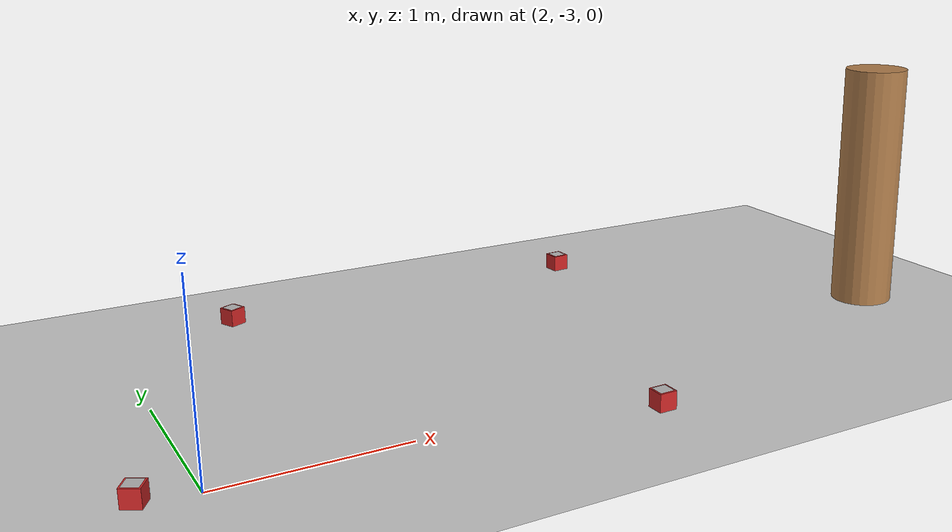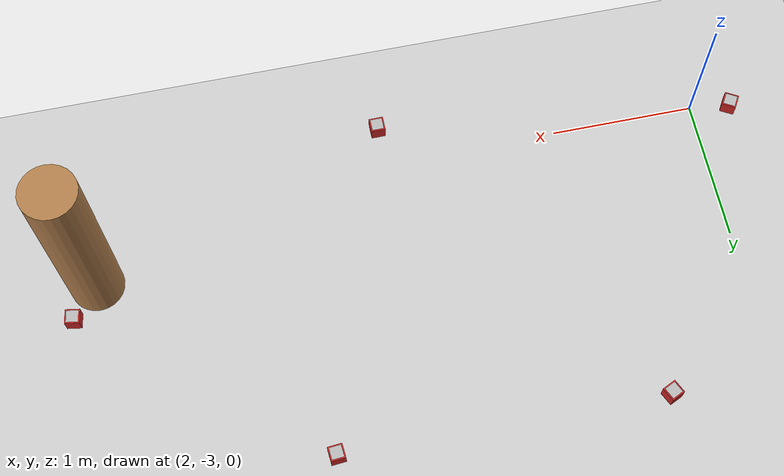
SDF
<sdf version="1.7">
 <world name="default">
  <model name="ground_plane">
   <static>1</static>
   <link name="link">
    <collision name="collision">
     <geometry><plane><normal>0 0 1</normal><size>100 100</size></plane></geometry>
     <surface><friction><ode><mu>100</mu><mu2>50</mu2></ode></friction></surface>
    </collision>
    <visual name="visual">
     <cast_shadows>0</cast_shadows>
     <geometry><plane><normal>0 0 1</normal><size>100 100</size></plane></geometry>
     <material>
      <script><uri>file://media/materials/scripts/gazebo.material</uri><name>Gazebo/Grey</name></script>
     </material>
    </visual>
   </link>
  </model>
  <model name="construction_cone_1">
   <pose>6.31383 -2.49412 0.728545 0 -0 -3.6e-05</pose>
   <link name="link">
    <inertial>
     <mass>1</mass>
     <inertia><ixx>0.145833</ixx><ixy>0</ixy><ixz>0</ixz><iyy>0.145833</iyy><iyz>0</iyz><izz>0.125</izz></inertia>
    </inertial>
    <collision name="collision">
     <geometry><cylinder><radius>0.183096</radius><length>1.4571</length></cylinder></geometry>
    </collision>
    <visual name="visual">
     <geometry><cylinder><radius>0.183096</radius><length>1.4571</length></cylinder></geometry>
     <material>
      <script><name>Gazebo/Wood</name><uri>file://media/materials/scripts/gazebo.material</uri></script>
     </material>
    </visual>
   </link>
  </model>
  <model name="poly_4">
   <pose>6.49418 -2.26681 0.049997 1e-06 6.1e-05 -0.158787</pose>
   <static>1</static>
   <link name="poly_4_link">
    <inertial>
     <mass>0.7</mass>
     <inertia>
      <ixx>0.00016667</ixx>
      <ixy>0</ixy>
      <ixz>0</ixz>
      <iyy>0.00016667</iyy>
      <iyz>0</iyz>
      <izz>0.00016667</izz>
     </inertia>
    </inertial>
    <collision name="collision"><geometry><box><size>0.1 0.1 0.1</size></box></geometry></collision>
    <visual name="visual">
     <geometry><box><size>0.1 0.1 0.1</size></box></geometry>
     <material>
      <script><name>Gazebo/Red</name><uri>file://media/materials/scripts/gazebo.material</uri></script>
     </material>
    </visual>
   </link>
   <link name="tag4">
    <pose>0 0 0.051 0 -0 0</pose>
    <collision name="collision"><geometry><box><size>0.0825 0.0825 0.0001</size></box></geometry></collision>
    <visual name="visual">
     <cast_shadows>0</cast_shadows>
     <geometry><box><size>0.0825 0.0825 0.0001</size></box></geometry>
     <material>
      <script>
       <uri>model://artag/materials/scripts</uri>
       <uri>model://artag/materials/textures</uri>
       <name>material/artag4</name>
      </script>
     </material>
    </visual>
    <inertial>
     <inertia><ixx>0.0001</ixx><ixy>0</ixy><ixz>0</ixz><iyy>0.0001</iyy><iyz>0</iyz><izz>0.0001</izz></inertia>
     <mass>0.1</mass>
    </inertial>
   </link>
   <joint name="poly_4_tag4" type="fixed">
    <parent>poly_4_link</parent>
    <child>tag4</child>
    <axis>
     <xyz>0 1 0</xyz>
     <limit><lower>-1e+16</lower><upper>1e+16</upper></limit>
     <use_parent_model_frame>0</use_parent_model_frame>
    </axis>
   </joint>
  </model>
  <model name="poly_8">
   <pose>1.72368 -2.95852 0.049997 -6.7e-05 1e-06 -2.09793</pose>
   <static>1</static>
   <link name="poly_8_link">
    <inertial>
     <mass>0.7</mass>
     <inertia>
      <ixx>0.00016667</ixx>
      <ixy>0</ixy>
      <ixz>0</ixz>
      <iyy>0.00016667</iyy>
      <iyz>0</iyz>
      <izz>0.00016667</izz>
     </inertia>
    </inertial>
    <collision name="collision"><geometry><box><size>0.1 0.1 0.1</size></box></geometry></collision>
    <visual name="visual">
     <geometry><box><size>0.1 0.1 0.1</size></box></geometry>
     <material>
      <script><name>Gazebo/Red</name><uri>file://media/materials/scripts/gazebo.material</uri></script>
     </material>
    </visual>
   </link>
   <link name="tag8">
    <pose>0 0 0.051 0 -0 0</pose>
    <collision name="collision"><geometry><box><size>0.0825 0.0825 0.0001</size></box></geometry></collision>
    <visual name="visual">
     <cast_shadows>0</cast_shadows>
     <geometry><box><size>0.0825 0.0825 0.0001</size></box></geometry>
     <material>
      <script>
       <uri>model://artag/materials/scripts</uri>
       <uri>model://artag/materials/textures</uri>
       <name>material/artag8</name>
      </script>
     </material>
    </visual>
    <inertial>
     <inertia><ixx>0.0001</ixx><ixy>0</ixy><ixz>0</ixz><iyy>0.0001</iyy><iyz>0</iyz><izz>0.0001</izz></inertia>
     <mass>0.1</mass>
    </inertial>
   </link>
   <joint name="poly_8_tag8" type="fixed"><parent>poly_8_link</parent><child>tag8</child></joint>
  </model>
  <model name="poly_12">
   <pose>2.71599 -0.958602 0.049997 -6.4e-05 -0 -1.13472</pose>
   <static>1</static>
   <link name="poly_12_link">
    <inertial>
     <mass>0.7</mass>
     <inertia>
      <ixx>0.00016667</ixx>
      <ixy>0</ixy>
      <ixz>0</ixz>
      <iyy>0.00016667</iyy>
      <iyz>0</iyz>
      <izz>0.00016667</izz>
     </inertia>
    </inertial>
    <collision name="collision"><geometry><box><size>0.1 0.1 0.1</size></box></geometry></collision>
    <visual name="visual">
     <geometry><box><size>0.1 0.1 0.1</size></box></geometry>
     <material>
      <script><name>Gazebo/Red</name><uri>file://media/materials/scripts/gazebo.material</uri></script>
     </material>
    </visual>
   </link>
   <link name="tag12">
    <pose>0 0 0.051 0 -0 0</pose>
    <collision name="collision"><geometry><box><size>0.0825 0.0825 0.0001</size></box></geometry></collision>
    <visual name="visual">
     <cast_shadows>0</cast_shadows>
     <geometry><box><size>0.0825 0.0825 0.0001</size></box></geometry>
     <material>
      <script>
       <uri>model://artag/materials/scripts</uri>
       <uri>model://artag/materials/textures</uri>
       <name>material/artag12</name>
      </script>
     </material>
    </visual>
    <inertial>
     <inertia><ixx>0.0001</ixx><ixy>0</ixy><ixz>0</ixz><iyy>0.0001</iyy><iyz>0</iyz><izz>0.0001</izz></inertia>
     <mass>0.1</mass>
    </inertial>
   </link>
   <joint name="poly_12_tag12" type="fixed"><parent>poly_12_link</parent><child>tag12</child></joint>
  </model>
  <model name="poly_13">
   <pose>4.9402 -0.9969 0.049997 1e-06 -6e-05 0.083121</pose>
   <static>1</static>
   <link name="poly_13_link">
    <inertial>
     <mass>0.7</mass>
     <inertia>
      <ixx>0.00016667</ixx>
      <ixy>0</ixy>
      <ixz>0</ixz>
      <iyy>0.00016667</iyy>
      <iyz>0</iyz>
      <izz>0.00016667</izz>
     </inertia>
    </inertial>
    <collision name="collision"><geometry><box><size>0.1 0.1 0.1</size></box></geometry></collision>
    <visual name="visual">
     <geometry><box><size>0.1 0.1 0.1</size></box></geometry>
     <material>
      <script><name>Gazebo/Red</name><uri>file://media/materials/scripts/gazebo.material</uri></script>
     </material>
    </visual>
   </link>
   <link name="tag13">
    <pose>0 0 0.051 0 -0 0</pose>
    <collision name="collision"><geometry><box><size>0.0825 0.0825 0.0001</size></box></geometry></collision>
    <visual name="visual">
     <cast_shadows>0</cast_shadows>
     <geometry><box><size>0.0825 0.0825 0.0001</size></box></geometry>
     <material>
      <script>
       <uri>model://artag/materials/scripts</uri>
       <uri>model://artag/materials/textures</uri>
       <name>material/artag13</name>
      </script>
     </material>
    </visual>
    <inertial>
     <inertia><ixx>0.0001</ixx><ixy>0</ixy><ixz>0</ixz><iyy>0.0001</iyy><iyz>0</iyz><izz>0.0001</izz></inertia>
     <mass>0.1</mass>
    </inertial>
   </link>
   <joint name="poly_13_tag13" type="fixed"><parent>poly_13_link</parent><child>tag13</child></joint>
  </model>
  <model name="poly_2">
   <pose>4.22819 -3.2769 0.049997 -2e-06 -6e-05 0.012658</pose>
   <static>1</static>
   <link name="poly_2_link">
    <inertial>
     <mass>0.7</mass>
     <inertia>
      <ixx>0.00016667</ixx>
      <ixy>0</ixy>
      <ixz>0</ixz>
      <iyy>0.00016667</iyy>
      <iyz>0</iyz>
      <izz>0.00016667</izz>
     </inertia>
    </inertial>
    <collision name="collision"><geometry><box><size>0.1 0.1 0.1</size></box></geometry></collision>
    <visual name="visual">
     <geometry><box><size>0.1 0.1 0.1</size></box></geometry>
     <material>
      <script><name>Gazebo/Red</name><uri>file://media/materials/scripts/gazebo.material</uri></script>
     </material>
    </visual>
   </link>
   <link name="tag2">
    <pose>0 0 0.051 0 -0 0</pose>
    <collision name="collision"><geometry><box><size>0.0825 0.0825 0.0001</size></box></geometry></collision>
    <visual name="visual">
     <cast_shadows>0</cast_shadows>
     <geometry><box><size>0.0825 0.0825 0.0001</size></box></geometry>
     <material>
      <script>
       <uri>model://artag/materials/scripts</uri>
       <uri>model://artag/materials/textures</uri>
       <name>material/artag2</name>
      </script>
     </material>
    </visual>
    <inertial>
     <inertia><ixx>0.0001</ixx><ixy>0</ixy><ixz>0</ixz><iyy>0.0001</iyy><iyz>0</iyz><izz>0.0001</izz></inertia>
     <mass>0.1</mass>
    </inertial>
   </link>
   <joint name="poly_2_tag2" type="fixed"><parent>poly_2_link</parent><child>tag2</child></joint>
  </model>
 </world>
</sdf>
